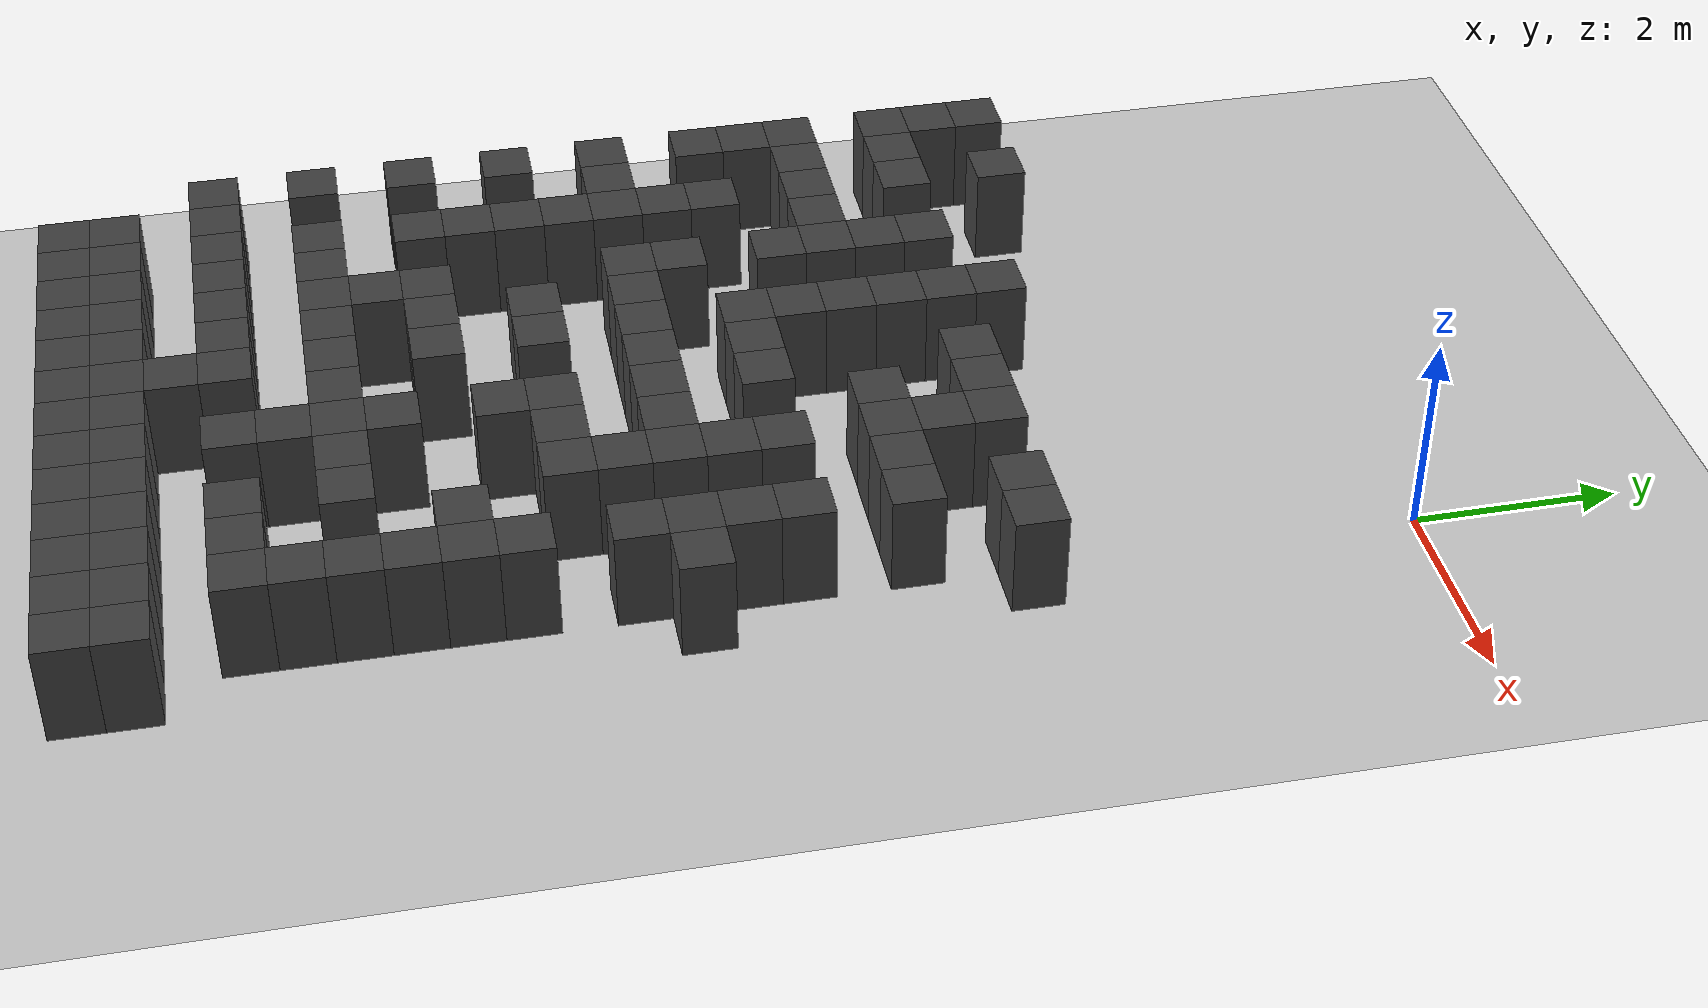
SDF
<sdf version="1.7">
 <world name="map_17663">
  <model name="ground_plane">
   <static>true</static>
   <link name="link">
    <collision name="collision">
     <geometry><plane><normal>0 0 1</normal><size>200 200</size></plane></geometry>
    </collision>
    <visual name="visual">
     <geometry><plane><normal>0 0 1</normal><size>200 200</size></plane></geometry>
     <material><ambient>0.8 0.8 0.8 1</ambient><diffuse>0.8 0.8 0.8 1</diffuse></material>
    </visual>
   </link>
  </model>
  <model name="maze_environment">
   <static>true</static>
   <link name="wall_746">
    <pose>-6.250 -2.750 0.500 0 0 0</pose>
    <collision name="col"><geometry><box><size>0.5 0.5 1.0</size></box></geometry></collision>
    <visual name="vis">
     <geometry><box><size>0.5 0.5 1.0</size></box></geometry>
     <material><ambient>0.15 0.15 0.15 1</ambient><diffuse>0.25 0.25 0.25 1</diffuse></material>
    </visual>
   </link>
   <link name="wall_747">
    <pose>-5.250 -2.750 0.500 0 0 0</pose>
    <collision name="col"><geometry><box><size>0.5 0.5 1.0</size></box></geometry></collision>
    <visual name="vis">
     <geometry><box><size>0.5 0.5 1.0</size></box></geometry>
     <material><ambient>0.15 0.15 0.15 1</ambient><diffuse>0.25 0.25 0.25 1</diffuse></material>
    </visual>
   </link>
   <link name="wall_781">
    <pose>-6.250 -3.250 0.500 0 0 0</pose>
    <collision name="col"><geometry><box><size>0.5 0.5 1.0</size></box></geometry></collision>
    <visual name="vis">
     <geometry><box><size>0.5 0.5 1.0</size></box></geometry>
     <material><ambient>0.15 0.15 0.15 1</ambient><diffuse>0.25 0.25 0.25 1</diffuse></material>
    </visual>
   </link>
   <link name="wall_782">
    <pose>-3.250 -3.250 0.500 0 0 0</pose>
    <collision name="col"><geometry><box><size>0.5 0.5 1.0</size></box></geometry></collision>
    <visual name="vis">
     <geometry><box><size>0.5 0.5 1.0</size></box></geometry>
     <material><ambient>0.15 0.15 0.15 1</ambient><diffuse>0.25 0.25 0.25 1</diffuse></material>
    </visual>
   </link>
   <link name="wall_797">
    <pose>-6.250 -3.750 0.500 0 0 0</pose>
    <collision name="col"><geometry><box><size>0.5 0.5 1.0</size></box></geometry></collision>
    <visual name="vis">
     <geometry><box><size>0.5 0.5 1.0</size></box></geometry>
     <material><ambient>0.15 0.15 0.15 1</ambient><diffuse>0.25 0.25 0.25 1</diffuse></material>
    </visual>
   </link>
   <link name="wall_798">
    <pose>-5.750 -3.750 0.500 0 0 0</pose>
    <collision name="col"><geometry><box><size>0.5 0.5 1.0</size></box></geometry></collision>
    <visual name="vis">
     <geometry><box><size>0.5 0.5 1.0</size></box></geometry>
     <material><ambient>0.15 0.15 0.15 1</ambient><diffuse>0.25 0.25 0.25 1</diffuse></material>
    </visual>
   </link>
   <link name="wall_799">
    <pose>-5.250 -3.750 0.500 0 0 0</pose>
    <collision name="col"><geometry><box><size>0.5 0.5 1.0</size></box></geometry></collision>
    <visual name="vis">
     <geometry><box><size>0.5 0.5 1.0</size></box></geometry>
     <material><ambient>0.15 0.15 0.15 1</ambient><diffuse>0.25 0.25 0.25 1</diffuse></material>
    </visual>
   </link>
   <link name="wall_800">
    <pose>-4.250 -3.750 0.500 0 0 0</pose>
    <collision name="col"><geometry><box><size>0.5 0.5 1.0</size></box></geometry></collision>
    <visual name="vis">
     <geometry><box><size>0.5 0.5 1.0</size></box></geometry>
     <material><ambient>0.15 0.15 0.15 1</ambient><diffuse>0.25 0.25 0.25 1</diffuse></material>
    </visual>
   </link>
   <link name="wall_801">
    <pose>-3.250 -3.750 0.500 0 0 0</pose>
    <collision name="col"><geometry><box><size>0.5 0.5 1.0</size></box></geometry></collision>
    <visual name="vis">
     <geometry><box><size>0.5 0.5 1.0</size></box></geometry>
     <material><ambient>0.15 0.15 0.15 1</ambient><diffuse>0.25 0.25 0.25 1</diffuse></material>
    </visual>
   </link>
   <link name="wall_802">
    <pose>-2.250 -3.750 0.500 0 0 0</pose>
    <collision name="col"><geometry><box><size>0.5 0.5 1.0</size></box></geometry></collision>
    <visual name="vis">
     <geometry><box><size>0.5 0.5 1.0</size></box></geometry>
     <material><ambient>0.15 0.15 0.15 1</ambient><diffuse>0.25 0.25 0.25 1</diffuse></material>
    </visual>
   </link>
   <link name="wall_803">
    <pose>-1.750 -3.750 0.500 0 0 0</pose>
    <collision name="col"><geometry><box><size>0.5 0.5 1.0</size></box></geometry></collision>
    <visual name="vis">
     <geometry><box><size>0.5 0.5 1.0</size></box></geometry>
     <material><ambient>0.15 0.15 0.15 1</ambient><diffuse>0.25 0.25 0.25 1</diffuse></material>
    </visual>
   </link>
   <link name="wall_804">
    <pose>-1.250 -3.750 0.500 0 0 0</pose>
    <collision name="col"><geometry><box><size>0.5 0.5 1.0</size></box></geometry></collision>
    <visual name="vis">
     <geometry><box><size>0.5 0.5 1.0</size></box></geometry>
     <material><ambient>0.15 0.15 0.15 1</ambient><diffuse>0.25 0.25 0.25 1</diffuse></material>
    </visual>
   </link>
   <link name="wall_805">
    <pose>-0.250 -3.750 0.500 0 0 0</pose>
    <collision name="col"><geometry><box><size>0.5 0.5 1.0</size></box></geometry></collision>
    <visual name="vis">
     <geometry><box><size>0.5 0.5 1.0</size></box></geometry>
     <material><ambient>0.15 0.15 0.15 1</ambient><diffuse>0.25 0.25 0.25 1</diffuse></material>
    </visual>
   </link>
   <link name="wall_806">
    <pose>0.250 -3.750 0.500 0 0 0</pose>
    <collision name="col"><geometry><box><size>0.5 0.5 1.0</size></box></geometry></collision>
    <visual name="vis">
     <geometry><box><size>0.5 0.5 1.0</size></box></geometry>
     <material><ambient>0.15 0.15 0.15 1</ambient><diffuse>0.25 0.25 0.25 1</diffuse></material>
    </visual>
   </link>
   <link name="wall_830">
    <pose>-4.250 -4.250 0.500 0 0 0</pose>
    <collision name="col"><geometry><box><size>0.5 0.5 1.0</size></box></geometry></collision>
    <visual name="vis">
     <geometry><box><size>0.5 0.5 1.0</size></box></geometry>
     <material><ambient>0.15 0.15 0.15 1</ambient><diffuse>0.25 0.25 0.25 1</diffuse></material>
    </visual>
   </link>
   <link name="wall_831">
    <pose>-3.250 -4.250 0.500 0 0 0</pose>
    <collision name="col"><geometry><box><size>0.5 0.5 1.0</size></box></geometry></collision>
    <visual name="vis">
     <geometry><box><size>0.5 0.5 1.0</size></box></geometry>
     <material><ambient>0.15 0.15 0.15 1</ambient><diffuse>0.25 0.25 0.25 1</diffuse></material>
    </visual>
   </link>
   <link name="wall_832">
    <pose>-1.250 -4.250 0.500 0 0 0</pose>
    <collision name="col"><geometry><box><size>0.5 0.5 1.0</size></box></geometry></collision>
    <visual name="vis">
     <geometry><box><size>0.5 0.5 1.0</size></box></geometry>
     <material><ambient>0.15 0.15 0.15 1</ambient><diffuse>0.25 0.25 0.25 1</diffuse></material>
    </visual>
   </link>
   <link name="wall_845">
    <pose>-6.250 -4.750 0.500 0 0 0</pose>
    <collision name="col"><geometry><box><size>0.5 0.5 1.0</size></box></geometry></collision>
    <visual name="vis">
     <geometry><box><size>0.5 0.5 1.0</size></box></geometry>
     <material><ambient>0.15 0.15 0.15 1</ambient><diffuse>0.25 0.25 0.25 1</diffuse></material>
    </visual>
   </link>
   <link name="wall_846">
    <pose>-5.750 -4.750 0.500 0 0 0</pose>
    <collision name="col"><geometry><box><size>0.5 0.5 1.0</size></box></geometry></collision>
    <visual name="vis">
     <geometry><box><size>0.5 0.5 1.0</size></box></geometry>
     <material><ambient>0.15 0.15 0.15 1</ambient><diffuse>0.25 0.25 0.25 1</diffuse></material>
    </visual>
   </link>
   <link name="wall_847">
    <pose>-5.250 -4.750 0.500 0 0 0</pose>
    <collision name="col"><geometry><box><size>0.5 0.5 1.0</size></box></geometry></collision>
    <visual name="vis">
     <geometry><box><size>0.5 0.5 1.0</size></box></geometry>
     <material><ambient>0.15 0.15 0.15 1</ambient><diffuse>0.25 0.25 0.25 1</diffuse></material>
    </visual>
   </link>
   <link name="wall_848">
    <pose>-4.750 -4.750 0.500 0 0 0</pose>
    <collision name="col"><geometry><box><size>0.5 0.5 1.0</size></box></geometry></collision>
    <visual name="vis">
     <geometry><box><size>0.5 0.5 1.0</size></box></geometry>
     <material><ambient>0.15 0.15 0.15 1</ambient><diffuse>0.25 0.25 0.25 1</diffuse></material>
    </visual>
   </link>
   <link name="wall_849">
    <pose>-4.250 -4.750 0.500 0 0 0</pose>
    <collision name="col"><geometry><box><size>0.5 0.5 1.0</size></box></geometry></collision>
    <visual name="vis">
     <geometry><box><size>0.5 0.5 1.0</size></box></geometry>
     <material><ambient>0.15 0.15 0.15 1</ambient><diffuse>0.25 0.25 0.25 1</diffuse></material>
    </visual>
   </link>
   <link name="wall_850">
    <pose>-3.250 -4.750 0.500 0 0 0</pose>
    <collision name="col"><geometry><box><size>0.5 0.5 1.0</size></box></geometry></collision>
    <visual name="vis">
     <geometry><box><size>0.5 0.5 1.0</size></box></geometry>
     <material><ambient>0.15 0.15 0.15 1</ambient><diffuse>0.25 0.25 0.25 1</diffuse></material>
    </visual>
   </link>
   <link name="wall_851">
    <pose>-1.750 -4.750 0.500 0 0 0</pose>
    <collision name="col"><geometry><box><size>0.5 0.5 1.0</size></box></geometry></collision>
    <visual name="vis">
     <geometry><box><size>0.5 0.5 1.0</size></box></geometry>
     <material><ambient>0.15 0.15 0.15 1</ambient><diffuse>0.25 0.25 0.25 1</diffuse></material>
    </visual>
   </link>
   <link name="wall_852">
    <pose>-1.250 -4.750 0.500 0 0 0</pose>
    <collision name="col"><geometry><box><size>0.5 0.5 1.0</size></box></geometry></collision>
    <visual name="vis">
     <geometry><box><size>0.5 0.5 1.0</size></box></geometry>
     <material><ambient>0.15 0.15 0.15 1</ambient><diffuse>0.25 0.25 0.25 1</diffuse></material>
    </visual>
   </link>
   <link name="wall_853">
    <pose>-0.750 -4.750 0.500 0 0 0</pose>
    <collision name="col"><geometry><box><size>0.5 0.5 1.0</size></box></geometry></collision>
    <visual name="vis">
     <geometry><box><size>0.5 0.5 1.0</size></box></geometry>
     <material><ambient>0.15 0.15 0.15 1</ambient><diffuse>0.25 0.25 0.25 1</diffuse></material>
    </visual>
   </link>
   <link name="wall_854">
    <pose>-0.250 -4.750 0.500 0 0 0</pose>
    <collision name="col"><geometry><box><size>0.5 0.5 1.0</size></box></geometry></collision>
    <visual name="vis">
     <geometry><box><size>0.5 0.5 1.0</size></box></geometry>
     <material><ambient>0.15 0.15 0.15 1</ambient><diffuse>0.25 0.25 0.25 1</diffuse></material>
    </visual>
   </link>
   <link name="wall_878">
    <pose>-6.250 -5.250 0.500 0 0 0</pose>
    <collision name="col"><geometry><box><size>0.5 0.5 1.0</size></box></geometry></collision>
    <visual name="vis">
     <geometry><box><size>0.5 0.5 1.0</size></box></geometry>
     <material><ambient>0.15 0.15 0.15 1</ambient><diffuse>0.25 0.25 0.25 1</diffuse></material>
    </visual>
   </link>
   <link name="wall_879">
    <pose>-4.250 -5.250 0.500 0 0 0</pose>
    <collision name="col"><geometry><box><size>0.5 0.5 1.0</size></box></geometry></collision>
    <visual name="vis">
     <geometry><box><size>0.5 0.5 1.0</size></box></geometry>
     <material><ambient>0.15 0.15 0.15 1</ambient><diffuse>0.25 0.25 0.25 1</diffuse></material>
    </visual>
   </link>
   <link name="wall_880">
    <pose>-3.250 -5.250 0.500 0 0 0</pose>
    <collision name="col"><geometry><box><size>0.5 0.5 1.0</size></box></geometry></collision>
    <visual name="vis">
     <geometry><box><size>0.5 0.5 1.0</size></box></geometry>
     <material><ambient>0.15 0.15 0.15 1</ambient><diffuse>0.25 0.25 0.25 1</diffuse></material>
    </visual>
   </link>
   <link name="wall_896">
    <pose>-6.250 -5.750 0.500 0 0 0</pose>
    <collision name="col"><geometry><box><size>0.5 0.5 1.0</size></box></geometry></collision>
    <visual name="vis">
     <geometry><box><size>0.5 0.5 1.0</size></box></geometry>
     <material><ambient>0.15 0.15 0.15 1</ambient><diffuse>0.25 0.25 0.25 1</diffuse></material>
    </visual>
   </link>
   <link name="wall_897">
    <pose>-5.250 -5.750 0.500 0 0 0</pose>
    <collision name="col"><geometry><box><size>0.5 0.5 1.0</size></box></geometry></collision>
    <visual name="vis">
     <geometry><box><size>0.5 0.5 1.0</size></box></geometry>
     <material><ambient>0.15 0.15 0.15 1</ambient><diffuse>0.25 0.25 0.25 1</diffuse></material>
    </visual>
   </link>
   <link name="wall_898">
    <pose>-3.250 -5.750 0.500 0 0 0</pose>
    <collision name="col"><geometry><box><size>0.5 0.5 1.0</size></box></geometry></collision>
    <visual name="vis">
     <geometry><box><size>0.5 0.5 1.0</size></box></geometry>
     <material><ambient>0.15 0.15 0.15 1</ambient><diffuse>0.25 0.25 0.25 1</diffuse></material>
    </visual>
   </link>
   <link name="wall_899">
    <pose>-2.750 -5.750 0.500 0 0 0</pose>
    <collision name="col"><geometry><box><size>0.5 0.5 1.0</size></box></geometry></collision>
    <visual name="vis">
     <geometry><box><size>0.5 0.5 1.0</size></box></geometry>
     <material><ambient>0.15 0.15 0.15 1</ambient><diffuse>0.25 0.25 0.25 1</diffuse></material>
    </visual>
   </link>
   <link name="wall_900">
    <pose>-2.250 -5.750 0.500 0 0 0</pose>
    <collision name="col"><geometry><box><size>0.5 0.5 1.0</size></box></geometry></collision>
    <visual name="vis">
     <geometry><box><size>0.5 0.5 1.0</size></box></geometry>
     <material><ambient>0.15 0.15 0.15 1</ambient><diffuse>0.25 0.25 0.25 1</diffuse></material>
    </visual>
   </link>
   <link name="wall_901">
    <pose>-1.250 -5.750 0.500 0 0 0</pose>
    <collision name="col"><geometry><box><size>0.5 0.5 1.0</size></box></geometry></collision>
    <visual name="vis">
     <geometry><box><size>0.5 0.5 1.0</size></box></geometry>
     <material><ambient>0.15 0.15 0.15 1</ambient><diffuse>0.25 0.25 0.25 1</diffuse></material>
    </visual>
   </link>
   <link name="wall_902">
    <pose>-0.250 -5.750 0.500 0 0 0</pose>
    <collision name="col"><geometry><box><size>0.5 0.5 1.0</size></box></geometry></collision>
    <visual name="vis">
     <geometry><box><size>0.5 0.5 1.0</size></box></geometry>
     <material><ambient>0.15 0.15 0.15 1</ambient><diffuse>0.25 0.25 0.25 1</diffuse></material>
    </visual>
   </link>
   <link name="wall_924">
    <pose>-5.250 -6.250 0.500 0 0 0</pose>
    <collision name="col"><geometry><box><size>0.5 0.5 1.0</size></box></geometry></collision>
    <visual name="vis">
     <geometry><box><size>0.5 0.5 1.0</size></box></geometry>
     <material><ambient>0.15 0.15 0.15 1</ambient><diffuse>0.25 0.25 0.25 1</diffuse></material>
    </visual>
   </link>
   <link name="wall_925">
    <pose>-4.250 -6.250 0.500 0 0 0</pose>
    <collision name="col"><geometry><box><size>0.5 0.5 1.0</size></box></geometry></collision>
    <visual name="vis">
     <geometry><box><size>0.5 0.5 1.0</size></box></geometry>
     <material><ambient>0.15 0.15 0.15 1</ambient><diffuse>0.25 0.25 0.25 1</diffuse></material>
    </visual>
   </link>
   <link name="wall_926">
    <pose>-1.250 -6.250 0.500 0 0 0</pose>
    <collision name="col"><geometry><box><size>0.5 0.5 1.0</size></box></geometry></collision>
    <visual name="vis">
     <geometry><box><size>0.5 0.5 1.0</size></box></geometry>
     <material><ambient>0.15 0.15 0.15 1</ambient><diffuse>0.25 0.25 0.25 1</diffuse></material>
    </visual>
   </link>
   <link name="wall_927">
    <pose>-0.250 -6.250 0.500 0 0 0</pose>
    <collision name="col"><geometry><box><size>0.5 0.5 1.0</size></box></geometry></collision>
    <visual name="vis">
     <geometry><box><size>0.5 0.5 1.0</size></box></geometry>
     <material><ambient>0.15 0.15 0.15 1</ambient><diffuse>0.25 0.25 0.25 1</diffuse></material>
    </visual>
   </link>
   <link name="wall_942">
    <pose>-6.250 -6.750 0.500 0 0 0</pose>
    <collision name="col"><geometry><box><size>0.5 0.5 1.0</size></box></geometry></collision>
    <visual name="vis">
     <geometry><box><size>0.5 0.5 1.0</size></box></geometry>
     <material><ambient>0.15 0.15 0.15 1</ambient><diffuse>0.25 0.25 0.25 1</diffuse></material>
    </visual>
   </link>
   <link name="wall_943">
    <pose>-5.750 -6.750 0.500 0 0 0</pose>
    <collision name="col"><geometry><box><size>0.5 0.5 1.0</size></box></geometry></collision>
    <visual name="vis">
     <geometry><box><size>0.5 0.5 1.0</size></box></geometry>
     <material><ambient>0.15 0.15 0.15 1</ambient><diffuse>0.25 0.25 0.25 1</diffuse></material>
    </visual>
   </link>
   <link name="wall_944">
    <pose>-5.250 -6.750 0.500 0 0 0</pose>
    <collision name="col"><geometry><box><size>0.5 0.5 1.0</size></box></geometry></collision>
    <visual name="vis">
     <geometry><box><size>0.5 0.5 1.0</size></box></geometry>
     <material><ambient>0.15 0.15 0.15 1</ambient><diffuse>0.25 0.25 0.25 1</diffuse></material>
    </visual>
   </link>
   <link name="wall_945">
    <pose>-4.250 -6.750 0.500 0 0 0</pose>
    <collision name="col"><geometry><box><size>0.5 0.5 1.0</size></box></geometry></collision>
    <visual name="vis">
     <geometry><box><size>0.5 0.5 1.0</size></box></geometry>
     <material><ambient>0.15 0.15 0.15 1</ambient><diffuse>0.25 0.25 0.25 1</diffuse></material>
    </visual>
   </link>
   <link name="wall_946">
    <pose>-3.750 -6.750 0.500 0 0 0</pose>
    <collision name="col"><geometry><box><size>0.5 0.5 1.0</size></box></geometry></collision>
    <visual name="vis">
     <geometry><box><size>0.5 0.5 1.0</size></box></geometry>
     <material><ambient>0.15 0.15 0.15 1</ambient><diffuse>0.25 0.25 0.25 1</diffuse></material>
    </visual>
   </link>
   <link name="wall_947">
    <pose>-3.250 -6.750 0.500 0 0 0</pose>
    <collision name="col"><geometry><box><size>0.5 0.5 1.0</size></box></geometry></collision>
    <visual name="vis">
     <geometry><box><size>0.5 0.5 1.0</size></box></geometry>
     <material><ambient>0.15 0.15 0.15 1</ambient><diffuse>0.25 0.25 0.25 1</diffuse></material>
    </visual>
   </link>
   <link name="wall_948">
    <pose>-2.750 -6.750 0.500 0 0 0</pose>
    <collision name="col"><geometry><box><size>0.5 0.5 1.0</size></box></geometry></collision>
    <visual name="vis">
     <geometry><box><size>0.5 0.5 1.0</size></box></geometry>
     <material><ambient>0.15 0.15 0.15 1</ambient><diffuse>0.25 0.25 0.25 1</diffuse></material>
    </visual>
   </link>
   <link name="wall_949">
    <pose>-2.250 -6.750 0.500 0 0 0</pose>
    <collision name="col"><geometry><box><size>0.5 0.5 1.0</size></box></geometry></collision>
    <visual name="vis">
     <geometry><box><size>0.5 0.5 1.0</size></box></geometry>
     <material><ambient>0.15 0.15 0.15 1</ambient><diffuse>0.25 0.25 0.25 1</diffuse></material>
    </visual>
   </link>
   <link name="wall_950">
    <pose>-1.750 -6.750 0.500 0 0 0</pose>
    <collision name="col"><geometry><box><size>0.5 0.5 1.0</size></box></geometry></collision>
    <visual name="vis">
     <geometry><box><size>0.5 0.5 1.0</size></box></geometry>
     <material><ambient>0.15 0.15 0.15 1</ambient><diffuse>0.25 0.25 0.25 1</diffuse></material>
    </visual>
   </link>
   <link name="wall_951">
    <pose>-1.250 -6.750 0.500 0 0 0</pose>
    <collision name="col"><geometry><box><size>0.5 0.5 1.0</size></box></geometry></collision>
    <visual name="vis">
     <geometry><box><size>0.5 0.5 1.0</size></box></geometry>
     <material><ambient>0.15 0.15 0.15 1</ambient><diffuse>0.25 0.25 0.25 1</diffuse></material>
    </visual>
   </link>
   <link name="wall_952">
    <pose>-0.250 -6.750 0.500 0 0 0</pose>
    <collision name="col"><geometry><box><size>0.5 0.5 1.0</size></box></geometry></collision>
    <visual name="vis">
     <geometry><box><size>0.5 0.5 1.0</size></box></geometry>
     <material><ambient>0.15 0.15 0.15 1</ambient><diffuse>0.25 0.25 0.25 1</diffuse></material>
    </visual>
   </link>
   <link name="wall_953">
    <pose>0.250 -6.750 0.500 0 0 0</pose>
    <collision name="col"><geometry><box><size>0.5 0.5 1.0</size></box></geometry></collision>
    <visual name="vis">
     <geometry><box><size>0.5 0.5 1.0</size></box></geometry>
     <material><ambient>0.15 0.15 0.15 1</ambient><diffuse>0.25 0.25 0.25 1</diffuse></material>
    </visual>
   </link>
   <link name="wall_977">
    <pose>-5.250 -7.250 0.500 0 0 0</pose>
    <collision name="col"><geometry><box><size>0.5 0.5 1.0</size></box></geometry></collision>
    <visual name="vis">
     <geometry><box><size>0.5 0.5 1.0</size></box></geometry>
     <material><ambient>0.15 0.15 0.15 1</ambient><diffuse>0.25 0.25 0.25 1</diffuse></material>
    </visual>
   </link>
   <link name="wall_978">
    <pose>-1.250 -7.250 0.500 0 0 0</pose>
    <collision name="col"><geometry><box><size>0.5 0.5 1.0</size></box></geometry></collision>
    <visual name="vis">
     <geometry><box><size>0.5 0.5 1.0</size></box></geometry>
     <material><ambient>0.15 0.15 0.15 1</ambient><diffuse>0.25 0.25 0.25 1</diffuse></material>
    </visual>
   </link>
   <link name="wall_979">
    <pose>-0.250 -7.250 0.500 0 0 0</pose>
    <collision name="col"><geometry><box><size>0.5 0.5 1.0</size></box></geometry></collision>
    <visual name="vis">
     <geometry><box><size>0.5 0.5 1.0</size></box></geometry>
     <material><ambient>0.15 0.15 0.15 1</ambient><diffuse>0.25 0.25 0.25 1</diffuse></material>
    </visual>
   </link>
   <link name="wall_996">
    <pose>-6.250 -7.750 0.500 0 0 0</pose>
    <collision name="col"><geometry><box><size>0.5 0.5 1.0</size></box></geometry></collision>
    <visual name="vis">
     <geometry><box><size>0.5 0.5 1.0</size></box></geometry>
     <material><ambient>0.15 0.15 0.15 1</ambient><diffuse>0.25 0.25 0.25 1</diffuse></material>
    </visual>
   </link>
   <link name="wall_997">
    <pose>-5.250 -7.750 0.500 0 0 0</pose>
    <collision name="col"><geometry><box><size>0.5 0.5 1.0</size></box></geometry></collision>
    <visual name="vis">
     <geometry><box><size>0.5 0.5 1.0</size></box></geometry>
     <material><ambient>0.15 0.15 0.15 1</ambient><diffuse>0.25 0.25 0.25 1</diffuse></material>
    </visual>
   </link>
   <link name="wall_998">
    <pose>-3.750 -7.750 0.500 0 0 0</pose>
    <collision name="col"><geometry><box><size>0.5 0.5 1.0</size></box></geometry></collision>
    <visual name="vis">
     <geometry><box><size>0.5 0.5 1.0</size></box></geometry>
     <material><ambient>0.15 0.15 0.15 1</ambient><diffuse>0.25 0.25 0.25 1</diffuse></material>
    </visual>
   </link>
   <link name="wall_999">
    <pose>-3.250 -7.750 0.500 0 0 0</pose>
    <collision name="col"><geometry><box><size>0.5 0.5 1.0</size></box></geometry></collision>
    <visual name="vis">
     <geometry><box><size>0.5 0.5 1.0</size></box></geometry>
     <material><ambient>0.15 0.15 0.15 1</ambient><diffuse>0.25 0.25 0.25 1</diffuse></material>
    </visual>
   </link>
   <link name="wall_1000">
    <pose>-2.250 -7.750 0.500 0 0 0</pose>
    <collision name="col"><geometry><box><size>0.5 0.5 1.0</size></box></geometry></collision>
    <visual name="vis">
     <geometry><box><size>0.5 0.5 1.0</size></box></geometry>
     <material><ambient>0.15 0.15 0.15 1</ambient><diffuse>0.25 0.25 0.25 1</diffuse></material>
    </visual>
   </link>
   <link name="wall_1001">
    <pose>-1.750 -7.750 0.500 0 0 0</pose>
    <collision name="col"><geometry><box><size>0.5 0.5 1.0</size></box></geometry></collision>
    <visual name="vis">
     <geometry><box><size>0.5 0.5 1.0</size></box></geometry>
     <material><ambient>0.15 0.15 0.15 1</ambient><diffuse>0.25 0.25 0.25 1</diffuse></material>
    </visual>
   </link>
   <link name="wall_1002">
    <pose>-1.250 -7.750 0.500 0 0 0</pose>
    <collision name="col"><geometry><box><size>0.5 0.5 1.0</size></box></geometry></collision>
    <visual name="vis">
     <geometry><box><size>0.5 0.5 1.0</size></box></geometry>
     <material><ambient>0.15 0.15 0.15 1</ambient><diffuse>0.25 0.25 0.25 1</diffuse></material>
    </visual>
   </link>
   <link name="wall_1023">
    <pose>-5.250 -8.250 0.500 0 0 0</pose>
    <collision name="col"><geometry><box><size>0.5 0.5 1.0</size></box></geometry></collision>
    <visual name="vis">
     <geometry><box><size>0.5 0.5 1.0</size></box></geometry>
     <material><ambient>0.15 0.15 0.15 1</ambient><diffuse>0.25 0.25 0.25 1</diffuse></material>
    </visual>
   </link>
   <link name="wall_1024">
    <pose>-2.250 -8.250 0.500 0 0 0</pose>
    <collision name="col"><geometry><box><size>0.5 0.5 1.0</size></box></geometry></collision>
    <visual name="vis">
     <geometry><box><size>0.5 0.5 1.0</size></box></geometry>
     <material><ambient>0.15 0.15 0.15 1</ambient><diffuse>0.25 0.25 0.25 1</diffuse></material>
    </visual>
   </link>
   <link name="wall_1025">
    <pose>-0.250 -8.250 0.500 0 0 0</pose>
    <collision name="col"><geometry><box><size>0.5 0.5 1.0</size></box></geometry></collision>
    <visual name="vis">
     <geometry><box><size>0.5 0.5 1.0</size></box></geometry>
     <material><ambient>0.15 0.15 0.15 1</ambient><diffuse>0.25 0.25 0.25 1</diffuse></material>
    </visual>
   </link>
   <link name="wall_1045">
    <pose>-6.250 -8.750 0.500 0 0 0</pose>
    <collision name="col"><geometry><box><size>0.5 0.5 1.0</size></box></geometry></collision>
    <visual name="vis">
     <geometry><box><size>0.5 0.5 1.0</size></box></geometry>
     <material><ambient>0.15 0.15 0.15 1</ambient><diffuse>0.25 0.25 0.25 1</diffuse></material>
    </visual>
   </link>
   <link name="wall_1046">
    <pose>-5.250 -8.750 0.500 0 0 0</pose>
    <collision name="col"><geometry><box><size>0.5 0.5 1.0</size></box></geometry></collision>
    <visual name="vis">
     <geometry><box><size>0.5 0.5 1.0</size></box></geometry>
     <material><ambient>0.15 0.15 0.15 1</ambient><diffuse>0.25 0.25 0.25 1</diffuse></material>
    </visual>
   </link>
   <link name="wall_1047">
    <pose>-4.250 -8.750 0.500 0 0 0</pose>
    <collision name="col"><geometry><box><size>0.5 0.5 1.0</size></box></geometry></collision>
    <visual name="vis">
     <geometry><box><size>0.5 0.5 1.0</size></box></geometry>
     <material><ambient>0.15 0.15 0.15 1</ambient><diffuse>0.25 0.25 0.25 1</diffuse></material>
    </visual>
   </link>
   <link name="wall_1048">
    <pose>-3.750 -8.750 0.500 0 0 0</pose>
    <collision name="col"><geometry><box><size>0.5 0.5 1.0</size></box></geometry></collision>
    <visual name="vis">
     <geometry><box><size>0.5 0.5 1.0</size></box></geometry>
     <material><ambient>0.15 0.15 0.15 1</ambient><diffuse>0.25 0.25 0.25 1</diffuse></material>
    </visual>
   </link>
   <link name="wall_1049">
    <pose>-3.250 -8.750 0.500 0 0 0</pose>
    <collision name="col"><geometry><box><size>0.5 0.5 1.0</size></box></geometry></collision>
    <visual name="vis">
     <geometry><box><size>0.5 0.5 1.0</size></box></geometry>
     <material><ambient>0.15 0.15 0.15 1</ambient><diffuse>0.25 0.25 0.25 1</diffuse></material>
    </visual>
   </link>
   <link name="wall_1050">
    <pose>-0.750 -8.750 0.500 0 0 0</pose>
    <collision name="col"><geometry><box><size>0.5 0.5 1.0</size></box></geometry></collision>
    <visual name="vis">
     <geometry><box><size>0.5 0.5 1.0</size></box></geometry>
     <material><ambient>0.15 0.15 0.15 1</ambient><diffuse>0.25 0.25 0.25 1</diffuse></material>
    </visual>
   </link>
   <link name="wall_1051">
    <pose>-0.250 -8.750 0.500 0 0 0</pose>
    <collision name="col"><geometry><box><size>0.5 0.5 1.0</size></box></geometry></collision>
    <visual name="vis">
     <geometry><box><size>0.5 0.5 1.0</size></box></geometry>
     <material><ambient>0.15 0.15 0.15 1</ambient><diffuse>0.25 0.25 0.25 1</diffuse></material>
    </visual>
   </link>
   <link name="wall_1072">
    <pose>-4.250 -9.250 0.500 0 0 0</pose>
    <collision name="col"><geometry><box><size>0.5 0.5 1.0</size></box></geometry></collision>
    <visual name="vis">
     <geometry><box><size>0.5 0.5 1.0</size></box></geometry>
     <material><ambient>0.15 0.15 0.15 1</ambient><diffuse>0.25 0.25 0.25 1</diffuse></material>
    </visual>
   </link>
   <link name="wall_1073">
    <pose>-2.250 -9.250 0.500 0 0 0</pose>
    <collision name="col"><geometry><box><size>0.5 0.5 1.0</size></box></geometry></collision>
    <visual name="vis">
     <geometry><box><size>0.5 0.5 1.0</size></box></geometry>
     <material><ambient>0.15 0.15 0.15 1</ambient><diffuse>0.25 0.25 0.25 1</diffuse></material>
    </visual>
   </link>
   <link name="wall_1074">
    <pose>-0.250 -9.250 0.500 0 0 0</pose>
    <collision name="col"><geometry><box><size>0.5 0.5 1.0</size></box></geometry></collision>
    <visual name="vis">
     <geometry><box><size>0.5 0.5 1.0</size></box></geometry>
     <material><ambient>0.15 0.15 0.15 1</ambient><diffuse>0.25 0.25 0.25 1</diffuse></material>
    </visual>
   </link>
   <link name="wall_1093">
    <pose>-6.250 -9.750 0.500 0 0 0</pose>
    <collision name="col"><geometry><box><size>0.5 0.5 1.0</size></box></geometry></collision>
    <visual name="vis">
     <geometry><box><size>0.5 0.5 1.0</size></box></geometry>
     <material><ambient>0.15 0.15 0.15 1</ambient><diffuse>0.25 0.25 0.25 1</diffuse></material>
    </visual>
   </link>
   <link name="wall_1094">
    <pose>-5.250 -9.750 0.500 0 0 0</pose>
    <collision name="col"><geometry><box><size>0.5 0.5 1.0</size></box></geometry></collision>
    <visual name="vis">
     <geometry><box><size>0.5 0.5 1.0</size></box></geometry>
     <material><ambient>0.15 0.15 0.15 1</ambient><diffuse>0.25 0.25 0.25 1</diffuse></material>
    </visual>
   </link>
   <link name="wall_1095">
    <pose>-4.750 -9.750 0.500 0 0 0</pose>
    <collision name="col"><geometry><box><size>0.5 0.5 1.0</size></box></geometry></collision>
    <visual name="vis">
     <geometry><box><size>0.5 0.5 1.0</size></box></geometry>
     <material><ambient>0.15 0.15 0.15 1</ambient><diffuse>0.25 0.25 0.25 1</diffuse></material>
    </visual>
   </link>
   <link name="wall_1096">
    <pose>-4.250 -9.750 0.500 0 0 0</pose>
    <collision name="col"><geometry><box><size>0.5 0.5 1.0</size></box></geometry></collision>
    <visual name="vis">
     <geometry><box><size>0.5 0.5 1.0</size></box></geometry>
     <material><ambient>0.15 0.15 0.15 1</ambient><diffuse>0.25 0.25 0.25 1</diffuse></material>
    </visual>
   </link>
   <link name="wall_1097">
    <pose>-3.750 -9.750 0.500 0 0 0</pose>
    <collision name="col"><geometry><box><size>0.5 0.5 1.0</size></box></geometry></collision>
    <visual name="vis">
     <geometry><box><size>0.5 0.5 1.0</size></box></geometry>
     <material><ambient>0.15 0.15 0.15 1</ambient><diffuse>0.25 0.25 0.25 1</diffuse></material>
    </visual>
   </link>
   <link name="wall_1098">
    <pose>-3.250 -9.750 0.500 0 0 0</pose>
    <collision name="col"><geometry><box><size>0.5 0.5 1.0</size></box></geometry></collision>
    <visual name="vis">
     <geometry><box><size>0.5 0.5 1.0</size></box></geometry>
     <material><ambient>0.15 0.15 0.15 1</ambient><diffuse>0.25 0.25 0.25 1</diffuse></material>
    </visual>
   </link>
   <link name="wall_1099">
    <pose>-2.750 -9.750 0.500 0 0 0</pose>
    <collision name="col"><geometry><box><size>0.5 0.5 1.0</size></box></geometry></collision>
    <visual name="vis">
     <geometry><box><size>0.5 0.5 1.0</size></box></geometry>
     <material><ambient>0.15 0.15 0.15 1</ambient><diffuse>0.25 0.25 0.25 1</diffuse></material>
    </visual>
   </link>
   <link name="wall_1100">
    <pose>-2.250 -9.750 0.500 0 0 0</pose>
    <collision name="col"><geometry><box><size>0.5 0.5 1.0</size></box></geometry></collision>
    <visual name="vis">
     <geometry><box><size>0.5 0.5 1.0</size></box></geometry>
     <material><ambient>0.15 0.15 0.15 1</ambient><diffuse>0.25 0.25 0.25 1</diffuse></material>
    </visual>
   </link>
   <link name="wall_1101">
    <pose>-1.750 -9.750 0.500 0 0 0</pose>
    <collision name="col"><geometry><box><size>0.5 0.5 1.0</size></box></geometry></collision>
    <visual name="vis">
     <geometry><box><size>0.5 0.5 1.0</size></box></geometry>
     <material><ambient>0.15 0.15 0.15 1</ambient><diffuse>0.25 0.25 0.25 1</diffuse></material>
    </visual>
   </link>
   <link name="wall_1102">
    <pose>-1.250 -9.750 0.500 0 0 0</pose>
    <collision name="col"><geometry><box><size>0.5 0.5 1.0</size></box></geometry></collision>
    <visual name="vis">
     <geometry><box><size>0.5 0.5 1.0</size></box></geometry>
     <material><ambient>0.15 0.15 0.15 1</ambient><diffuse>0.25 0.25 0.25 1</diffuse></material>
    </visual>
   </link>
   <link name="wall_1103">
    <pose>-0.250 -9.750 0.500 0 0 0</pose>
    <collision name="col"><geometry><box><size>0.5 0.5 1.0</size></box></geometry></collision>
    <visual name="vis">
     <geometry><box><size>0.5 0.5 1.0</size></box></geometry>
     <material><ambient>0.15 0.15 0.15 1</ambient><diffuse>0.25 0.25 0.25 1</diffuse></material>
    </visual>
   </link>
   <link name="wall_1123">
    <pose>-2.250 -10.250 0.500 0 0 0</pose>
    <collision name="col"><geometry><box><size>0.5 0.5 1.0</size></box></geometry></collision>
    <visual name="vis">
     <geometry><box><size>0.5 0.5 1.0</size></box></geometry>
     <material><ambient>0.15 0.15 0.15 1</ambient><diffuse>0.25 0.25 0.25 1</diffuse></material>
    </visual>
   </link>
   <link name="wall_1124">
    <pose>-0.250 -10.250 0.500 0 0 0</pose>
    <collision name="col"><geometry><box><size>0.5 0.5 1.0</size></box></geometry></collision>
    <visual name="vis">
     <geometry><box><size>0.5 0.5 1.0</size></box></geometry>
     <material><ambient>0.15 0.15 0.15 1</ambient><diffuse>0.25 0.25 0.25 1</diffuse></material>
    </visual>
   </link>
   <link name="wall_1142">
    <pose>-6.250 -10.750 0.500 0 0 0</pose>
    <collision name="col"><geometry><box><size>0.5 0.5 1.0</size></box></geometry></collision>
    <visual name="vis">
     <geometry><box><size>0.5 0.5 1.0</size></box></geometry>
     <material><ambient>0.15 0.15 0.15 1</ambient><diffuse>0.25 0.25 0.25 1</diffuse></material>
    </visual>
   </link>
   <link name="wall_1143">
    <pose>-5.750 -10.750 0.500 0 0 0</pose>
    <collision name="col"><geometry><box><size>0.5 0.5 1.0</size></box></geometry></collision>
    <visual name="vis">
     <geometry><box><size>0.5 0.5 1.0</size></box></geometry>
     <material><ambient>0.15 0.15 0.15 1</ambient><diffuse>0.25 0.25 0.25 1</diffuse></material>
    </visual>
   </link>
   <link name="wall_1144">
    <pose>-5.250 -10.750 0.500 0 0 0</pose>
    <collision name="col"><geometry><box><size>0.5 0.5 1.0</size></box></geometry></collision>
    <visual name="vis">
     <geometry><box><size>0.5 0.5 1.0</size></box></geometry>
     <material><ambient>0.15 0.15 0.15 1</ambient><diffuse>0.25 0.25 0.25 1</diffuse></material>
    </visual>
   </link>
   <link name="wall_1145">
    <pose>-4.750 -10.750 0.500 0 0 0</pose>
    <collision name="col"><geometry><box><size>0.5 0.5 1.0</size></box></geometry></collision>
    <visual name="vis">
     <geometry><box><size>0.5 0.5 1.0</size></box></geometry>
     <material><ambient>0.15 0.15 0.15 1</ambient><diffuse>0.25 0.25 0.25 1</diffuse></material>
    </visual>
   </link>
   <link name="wall_1146">
    <pose>-4.250 -10.750 0.500 0 0 0</pose>
    <collision name="col"><geometry><box><size>0.5 0.5 1.0</size></box></geometry></collision>
    <visual name="vis">
     <geometry><box><size>0.5 0.5 1.0</size></box></geometry>
     <material><ambient>0.15 0.15 0.15 1</ambient><diffuse>0.25 0.25 0.25 1</diffuse></material>
    </visual>
   </link>
   <link name="wall_1147">
    <pose>-3.750 -10.750 0.500 0 0 0</pose>
    <collision name="col"><geometry><box><size>0.5 0.5 1.0</size></box></geometry></collision>
    <visual name="vis">
     <geometry><box><size>0.5 0.5 1.0</size></box></geometry>
     <material><ambient>0.15 0.15 0.15 1</ambient><diffuse>0.25 0.25 0.25 1</diffuse></material>
    </visual>
   </link>
   <link name="wall_1148">
    <pose>-3.250 -10.750 0.500 0 0 0</pose>
    <collision name="col"><geometry><box><size>0.5 0.5 1.0</size></box></geometry></collision>
    <visual name="vis">
     <geometry><box><size>0.5 0.5 1.0</size></box></geometry>
     <material><ambient>0.15 0.15 0.15 1</ambient><diffuse>0.25 0.25 0.25 1</diffuse></material>
    </visual>
   </link>
   <link name="wall_1149">
    <pose>-2.250 -10.750 0.500 0 0 0</pose>
    <collision name="col"><geometry><box><size>0.5 0.5 1.0</size></box></geometry></collision>
    <visual name="vis">
     <geometry><box><size>0.5 0.5 1.0</size></box></geometry>
     <material><ambient>0.15 0.15 0.15 1</ambient><diffuse>0.25 0.25 0.25 1</diffuse></material>
    </visual>
   </link>
   <link name="wall_1150">
    <pose>-1.250 -10.750 0.500 0 0 0</pose>
    <collision name="col"><geometry><box><size>0.5 0.5 1.0</size></box></geometry></collision>
    <visual name="vis">
     <geometry><box><size>0.5 0.5 1.0</size></box></geometry>
     <material><ambient>0.15 0.15 0.15 1</ambient><diffuse>0.25 0.25 0.25 1</diffuse></material>
    </visual>
   </link>
   <link name="wall_1151">
    <pose>-0.750 -10.750 0.500 0 0 0</pose>
    <collision name="col"><geometry><box><size>0.5 0.5 1.0</size></box></geometry></collision>
    <visual name="vis">
     <geometry><box><size>0.5 0.5 1.0</size></box></geometry>
     <material><ambient>0.15 0.15 0.15 1</ambient><diffuse>0.25 0.25 0.25 1</diffuse></material>
    </visual>
   </link>
   <link name="wall_1152">
    <pose>-0.250 -10.750 0.500 0 0 0</pose>
    <collision name="col"><geometry><box><size>0.5 0.5 1.0</size></box></geometry></collision>
    <visual name="vis">
     <geometry><box><size>0.5 0.5 1.0</size></box></geometry>
     <material><ambient>0.15 0.15 0.15 1</ambient><diffuse>0.25 0.25 0.25 1</diffuse></material>
    </visual>
   </link>
   <link name="wall_1171">
    <pose>-3.250 -11.250 0.500 0 0 0</pose>
    <collision name="col"><geometry><box><size>0.5 0.5 1.0</size></box></geometry></collision>
    <visual name="vis">
     <geometry><box><size>0.5 0.5 1.0</size></box></geometry>
     <material><ambient>0.15 0.15 0.15 1</ambient><diffuse>0.25 0.25 0.25 1</diffuse></material>
    </visual>
   </link>
   <link name="wall_1189">
    <pose>-5.750 -11.750 0.500 0 0 0</pose>
    <collision name="col"><geometry><box><size>0.5 0.5 1.0</size></box></geometry></collision>
    <visual name="vis">
     <geometry><box><size>0.5 0.5 1.0</size></box></geometry>
     <material><ambient>0.15 0.15 0.15 1</ambient><diffuse>0.25 0.25 0.25 1</diffuse></material>
    </visual>
   </link>
   <link name="wall_1190">
    <pose>-5.250 -11.750 0.500 0 0 0</pose>
    <collision name="col"><geometry><box><size>0.5 0.5 1.0</size></box></geometry></collision>
    <visual name="vis">
     <geometry><box><size>0.5 0.5 1.0</size></box></geometry>
     <material><ambient>0.15 0.15 0.15 1</ambient><diffuse>0.25 0.25 0.25 1</diffuse></material>
    </visual>
   </link>
   <link name="wall_1191">
    <pose>-4.750 -11.750 0.500 0 0 0</pose>
    <collision name="col"><geometry><box><size>0.5 0.5 1.0</size></box></geometry></collision>
    <visual name="vis">
     <geometry><box><size>0.5 0.5 1.0</size></box></geometry>
     <material><ambient>0.15 0.15 0.15 1</ambient><diffuse>0.25 0.25 0.25 1</diffuse></material>
    </visual>
   </link>
   <link name="wall_1192">
    <pose>-4.250 -11.750 0.500 0 0 0</pose>
    <collision name="col"><geometry><box><size>0.5 0.5 1.0</size></box></geometry></collision>
    <visual name="vis">
     <geometry><box><size>0.5 0.5 1.0</size></box></geometry>
     <material><ambient>0.15 0.15 0.15 1</ambient><diffuse>0.25 0.25 0.25 1</diffuse></material>
    </visual>
   </link>
   <link name="wall_1193">
    <pose>-3.750 -11.750 0.500 0 0 0</pose>
    <collision name="col"><geometry><box><size>0.5 0.5 1.0</size></box></geometry></collision>
    <visual name="vis">
     <geometry><box><size>0.5 0.5 1.0</size></box></geometry>
     <material><ambient>0.15 0.15 0.15 1</ambient><diffuse>0.25 0.25 0.25 1</diffuse></material>
    </visual>
   </link>
   <link name="wall_1194">
    <pose>-3.250 -11.750 0.500 0 0 0</pose>
    <collision name="col"><geometry><box><size>0.5 0.5 1.0</size></box></geometry></collision>
    <visual name="vis">
     <geometry><box><size>0.5 0.5 1.0</size></box></geometry>
     <material><ambient>0.15 0.15 0.15 1</ambient><diffuse>0.25 0.25 0.25 1</diffuse></material>
    </visual>
   </link>
   <link name="wall_1195">
    <pose>-2.750 -11.750 0.500 0 0 0</pose>
    <collision name="col"><geometry><box><size>0.5 0.5 1.0</size></box></geometry></collision>
    <visual name="vis">
     <geometry><box><size>0.5 0.5 1.0</size></box></geometry>
     <material><ambient>0.15 0.15 0.15 1</ambient><diffuse>0.25 0.25 0.25 1</diffuse></material>
    </visual>
   </link>
   <link name="wall_1196">
    <pose>-2.250 -11.750 0.500 0 0 0</pose>
    <collision name="col"><geometry><box><size>0.5 0.5 1.0</size></box></geometry></collision>
    <visual name="vis">
     <geometry><box><size>0.5 0.5 1.0</size></box></geometry>
     <material><ambient>0.15 0.15 0.15 1</ambient><diffuse>0.25 0.25 0.25 1</diffuse></material>
    </visual>
   </link>
   <link name="wall_1197">
    <pose>-1.750 -11.750 0.500 0 0 0</pose>
    <collision name="col"><geometry><box><size>0.5 0.5 1.0</size></box></geometry></collision>
    <visual name="vis">
     <geometry><box><size>0.5 0.5 1.0</size></box></geometry>
     <material><ambient>0.15 0.15 0.15 1</ambient><diffuse>0.25 0.25 0.25 1</diffuse></material>
    </visual>
   </link>
   <link name="wall_1198">
    <pose>-1.250 -11.750 0.500 0 0 0</pose>
    <collision name="col"><geometry><box><size>0.5 0.5 1.0</size></box></geometry></collision>
    <visual name="vis">
     <geometry><box><size>0.5 0.5 1.0</size></box></geometry>
     <material><ambient>0.15 0.15 0.15 1</ambient><diffuse>0.25 0.25 0.25 1</diffuse></material>
    </visual>
   </link>
   <link name="wall_1199">
    <pose>-0.750 -11.750 0.500 0 0 0</pose>
    <collision name="col"><geometry><box><size>0.5 0.5 1.0</size></box></geometry></collision>
    <visual name="vis">
     <geometry><box><size>0.5 0.5 1.0</size></box></geometry>
     <material><ambient>0.15 0.15 0.15 1</ambient><diffuse>0.25 0.25 0.25 1</diffuse></material>
    </visual>
   </link>
   <link name="wall_1200">
    <pose>-0.250 -11.750 0.500 0 0 0</pose>
    <collision name="col"><geometry><box><size>0.5 0.5 1.0</size></box></geometry></collision>
    <visual name="vis">
     <geometry><box><size>0.5 0.5 1.0</size></box></geometry>
     <material><ambient>0.15 0.15 0.15 1</ambient><diffuse>0.25 0.25 0.25 1</diffuse></material>
    </visual>
   </link>
   <link name="wall_1201">
    <pose>0.250 -11.750 0.500 0 0 0</pose>
    <collision name="col"><geometry><box><size>0.5 0.5 1.0</size></box></geometry></collision>
    <visual name="vis">
     <geometry><box><size>0.5 0.5 1.0</size></box></geometry>
     <material><ambient>0.15 0.15 0.15 1</ambient><diffuse>0.25 0.25 0.25 1</diffuse></material>
    </visual>
   </link>
   <link name="wall_1237">
    <pose>-5.750 -12.250 0.500 0 0 0</pose>
    <collision name="col"><geometry><box><size>0.5 0.5 1.0</size></box></geometry></collision>
    <visual name="vis">
     <geometry><box><size>0.5 0.5 1.0</size></box></geometry>
     <material><ambient>0.15 0.15 0.15 1</ambient><diffuse>0.25 0.25 0.25 1</diffuse></material>
    </visual>
   </link>
   <link name="wall_1238">
    <pose>-5.250 -12.250 0.500 0 0 0</pose>
    <collision name="col"><geometry><box><size>0.5 0.5 1.0</size></box></geometry></collision>
    <visual name="vis">
     <geometry><box><size>0.5 0.5 1.0</size></box></geometry>
     <material><ambient>0.15 0.15 0.15 1</ambient><diffuse>0.25 0.25 0.25 1</diffuse></material>
    </visual>
   </link>
   <link name="wall_1239">
    <pose>-4.750 -12.250 0.500 0 0 0</pose>
    <collision name="col"><geometry><box><size>0.5 0.5 1.0</size></box></geometry></collision>
    <visual name="vis">
     <geometry><box><size>0.5 0.5 1.0</size></box></geometry>
     <material><ambient>0.15 0.15 0.15 1</ambient><diffuse>0.25 0.25 0.25 1</diffuse></material>
    </visual>
   </link>
   <link name="wall_1240">
    <pose>-4.250 -12.250 0.500 0 0 0</pose>
    <collision name="col"><geometry><box><size>0.5 0.5 1.0</size></box></geometry></collision>
    <visual name="vis">
     <geometry><box><size>0.5 0.5 1.0</size></box></geometry>
     <material><ambient>0.15 0.15 0.15 1</ambient><diffuse>0.25 0.25 0.25 1</diffuse></material>
    </visual>
   </link>
   <link name="wall_1241">
    <pose>-3.750 -12.250 0.500 0 0 0</pose>
    <collision name="col"><geometry><box><size>0.5 0.5 1.0</size></box></geometry></collision>
    <visual name="vis">
     <geometry><box><size>0.5 0.5 1.0</size></box></geometry>
     <material><ambient>0.15 0.15 0.15 1</ambient><diffuse>0.25 0.25 0.25 1</diffuse></material>
    </visual>
   </link>
   <link name="wall_1242">
    <pose>-3.250 -12.250 0.500 0 0 0</pose>
    <collision name="col"><geometry><box><size>0.5 0.5 1.0</size></box></geometry></collision>
    <visual name="vis">
     <geometry><box><size>0.5 0.5 1.0</size></box></geometry>
     <material><ambient>0.15 0.15 0.15 1</ambient><diffuse>0.25 0.25 0.25 1</diffuse></material>
    </visual>
   </link>
   <link name="wall_1243">
    <pose>-2.750 -12.250 0.500 0 0 0</pose>
    <collision name="col"><geometry><box><size>0.5 0.5 1.0</size></box></geometry></collision>
    <visual name="vis">
     <geometry><box><size>0.5 0.5 1.0</size></box></geometry>
     <material><ambient>0.15 0.15 0.15 1</ambient><diffuse>0.25 0.25 0.25 1</diffuse></material>
    </visual>
   </link>
   <link name="wall_1244">
    <pose>-2.250 -12.250 0.500 0 0 0</pose>
    <collision name="col"><geometry><box><size>0.5 0.5 1.0</size></box></geometry></collision>
    <visual name="vis">
     <geometry><box><size>0.5 0.5 1.0</size></box></geometry>
     <material><ambient>0.15 0.15 0.15 1</ambient><diffuse>0.25 0.25 0.25 1</diffuse></material>
    </visual>
   </link>
   <link name="wall_1245">
    <pose>-1.750 -12.250 0.500 0 0 0</pose>
    <collision name="col"><geometry><box><size>0.5 0.5 1.0</size></box></geometry></collision>
    <visual name="vis">
     <geometry><box><size>0.5 0.5 1.0</size></box></geometry>
     <material><ambient>0.15 0.15 0.15 1</ambient><diffuse>0.25 0.25 0.25 1</diffuse></material>
    </visual>
   </link>
   <link name="wall_1246">
    <pose>-1.250 -12.250 0.500 0 0 0</pose>
    <collision name="col"><geometry><box><size>0.5 0.5 1.0</size></box></geometry></collision>
    <visual name="vis">
     <geometry><box><size>0.5 0.5 1.0</size></box></geometry>
     <material><ambient>0.15 0.15 0.15 1</ambient><diffuse>0.25 0.25 0.25 1</diffuse></material>
    </visual>
   </link>
   <link name="wall_1247">
    <pose>-0.750 -12.250 0.500 0 0 0</pose>
    <collision name="col"><geometry><box><size>0.5 0.5 1.0</size></box></geometry></collision>
    <visual name="vis">
     <geometry><box><size>0.5 0.5 1.0</size></box></geometry>
     <material><ambient>0.15 0.15 0.15 1</ambient><diffuse>0.25 0.25 0.25 1</diffuse></material>
    </visual>
   </link>
   <link name="wall_1248">
    <pose>-0.250 -12.250 0.500 0 0 0</pose>
    <collision name="col"><geometry><box><size>0.5 0.5 1.0</size></box></geometry></collision>
    <visual name="vis">
     <geometry><box><size>0.5 0.5 1.0</size></box></geometry>
     <material><ambient>0.15 0.15 0.15 1</ambient><diffuse>0.25 0.25 0.25 1</diffuse></material>
    </visual>
   </link>
   <link name="wall_1249">
    <pose>0.250 -12.250 0.500 0 0 0</pose>
    <collision name="col"><geometry><box><size>0.5 0.5 1.0</size></box></geometry></collision>
    <visual name="vis">
     <geometry><box><size>0.5 0.5 1.0</size></box></geometry>
     <material><ambient>0.15 0.15 0.15 1</ambient><diffuse>0.25 0.25 0.25 1</diffuse></material>
    </visual>
   </link>
  </model>
 </world>
</sdf>
